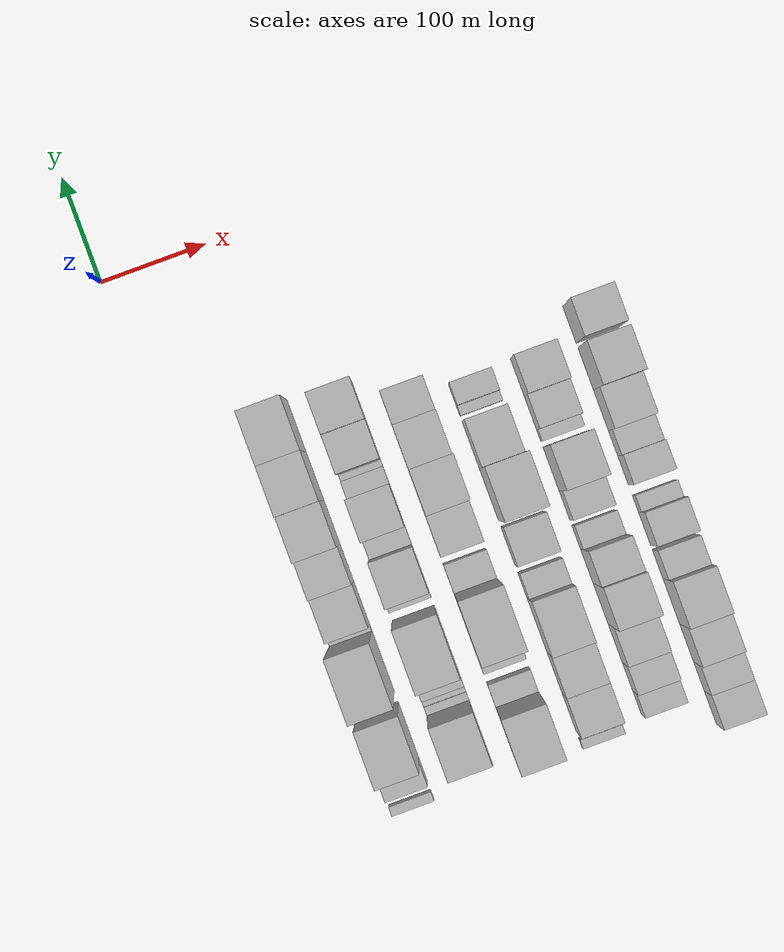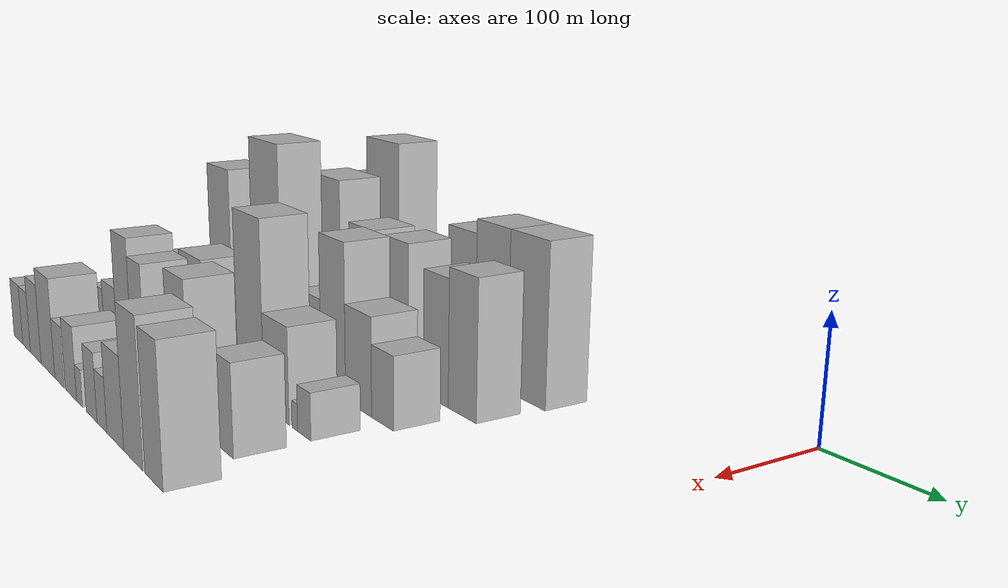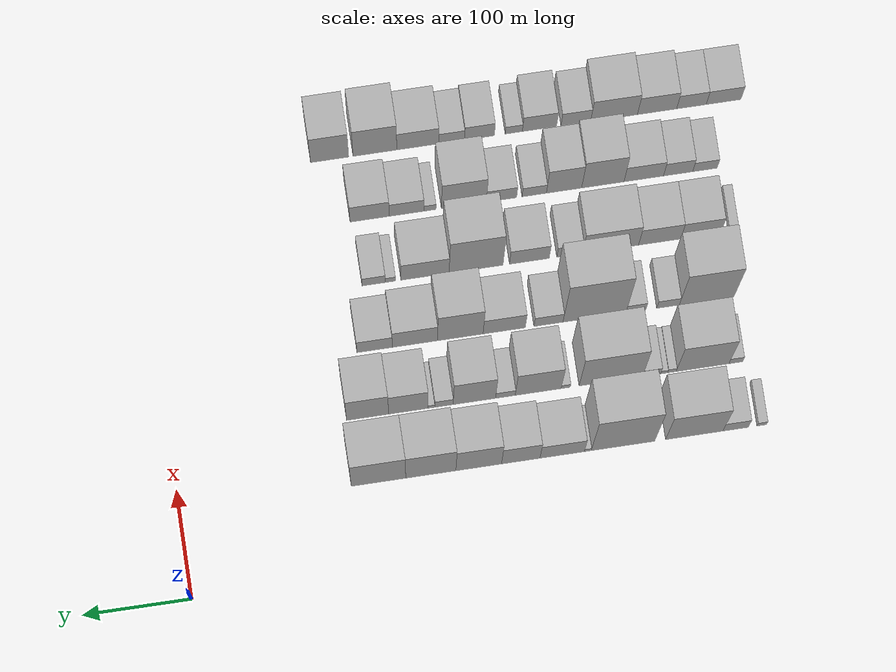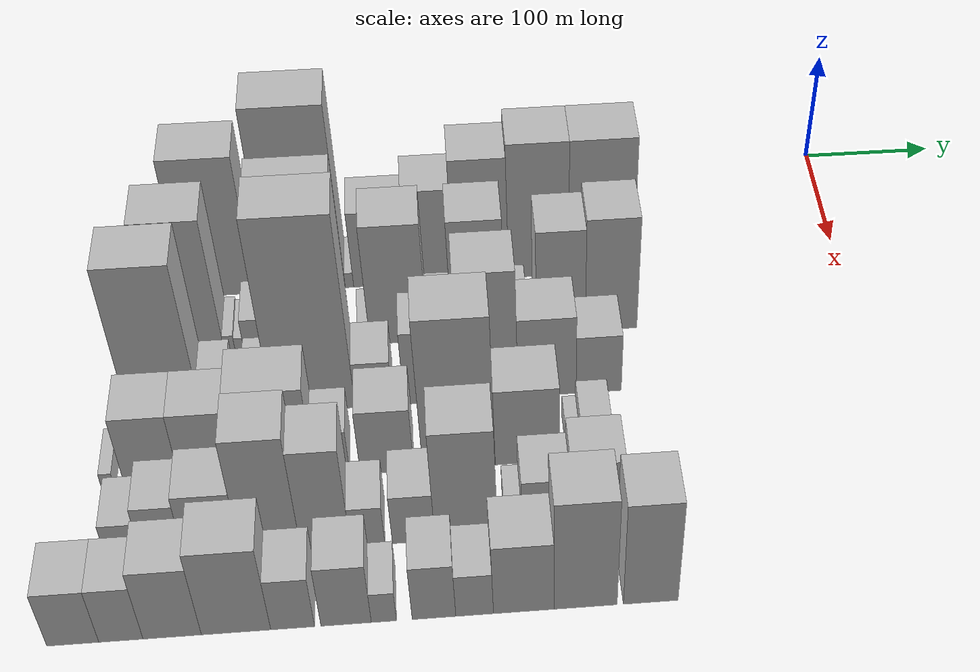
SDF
<sdf version="1.6">
 <world name="default">
  <model name="building_13">
   <static>1</static>
   <pose>100.0000 -531.7579 0 0.000000 0.000000 0.000000</pose>
   <link name="link">
    <pose>0 0 9.00 0 0 0</pose>
    <collision name="collision"><geometry><box><size>40.0000 8.8366 18.0000</size></box></geometry></collision>
    <visual name="visual">
     <cast_shadows>0</cast_shadows>
     <geometry><box><size>40.0000 8.8366 18.0000</size></box></geometry>
     <material>
      <script>
       <uri>model://HANNAS_wall/materials/scripts</uri>
       <uri>model://HANNAS_wall/materials/textures</uri>
       <name>vrc/HANNAS_wall</name>
      </script>
     </material>
    </visual>
   </link>
  </model>
  <model name="building_14">
   <static>1</static>
   <pose>100.0000 -507.6548 0 0.000000 0.000000 0.000000</pose>
   <link name="link">
    <pose>0 0 22.50 0 0 0</pose>
    <collision name="collision"><geometry><box><size>40.0000 23.3695 45.0000</size></box></geometry></collision>
    <visual name="visual">
     <cast_shadows>0</cast_shadows>
     <geometry><box><size>40.0000 23.3695 45.0000</size></box></geometry>
     <material>
      <script>
       <uri>model://HANNAS_wall/materials/scripts</uri>
       <uri>model://HANNAS_wall/materials/textures</uri>
       <name>vrc/HANNAS_wall</name>
      </script>
     </material>
    </visual>
   </link>
  </model>
  <model name="building_15">
   <static>1</static>
   <pose>100.0000 -469.8242 0 0.000000 0.000000 0.000000</pose>
   <link name="link">
    <pose>0 0 67.50 0 0 0</pose>
    <collision name="collision"><geometry><box><size>40.0000 52.2918 135.0000</size></box></geometry></collision>
    <visual name="visual">
     <cast_shadows>0</cast_shadows>
     <geometry><box><size>40.0000 52.2918 135.0000</size></box></geometry>
     <material>
      <script>
       <uri>model://HANNAS_wall/materials/scripts</uri>
       <uri>model://HANNAS_wall/materials/textures</uri>
       <name>vrc/HANNAS_wall</name>
      </script>
     </material>
    </visual>
   </link>
  </model>
  <model name="building_16">
   <static>1</static>
   <pose>100.0000 -404.6347 0 0.000000 0.000000 0.000000</pose>
   <link name="link">
    <pose>0 0 88.50 0 0 0</pose>
    <collision name="collision"><geometry><box><size>40.0000 58.0870 177.0000</size></box></geometry></collision>
    <visual name="visual">
     <cast_shadows>0</cast_shadows>
     <geometry><box><size>40.0000 58.0870 177.0000</size></box></geometry>
     <material>
      <script>
       <uri>model://HANNAS_wall/materials/scripts</uri>
       <uri>model://HANNAS_wall/materials/textures</uri>
       <name>vrc/HANNAS_wall</name>
      </script>
     </material>
    </visual>
   </link>
  </model>
  <model name="building_17">
   <static>1</static>
   <pose>100.0000 -372.4116 0 0.000000 0.000000 0.000000</pose>
   <link name="link">
    <pose>0 0 7.50 0 0 0</pose>
    <collision name="collision"><geometry><box><size>40.0000 6.3594 15.0000</size></box></geometry></collision>
    <visual name="visual">
     <cast_shadows>0</cast_shadows>
     <geometry><box><size>40.0000 6.3594 15.0000</size></box></geometry>
     <material>
      <script>
       <uri>model://HANNAS_wall/materials/scripts</uri>
       <uri>model://HANNAS_wall/materials/textures</uri>
       <name>vrc/HANNAS_wall</name>
      </script>
     </material>
    </visual>
   </link>
  </model>
  <model name="building_18">
   <static>1</static>
   <pose>100.0000 -348.9371 0 0.000000 0.000000 0.000000</pose>
   <link name="link">
    <pose>0 0 37.50 0 0 0</pose>
    <collision name="collision"><geometry><box><size>40.0000 40.5896 75.0000</size></box></geometry></collision>
    <visual name="visual">
     <cast_shadows>0</cast_shadows>
     <geometry><box><size>40.0000 40.5896 75.0000</size></box></geometry>
     <material>
      <script>
       <uri>model://HANNAS_wall/materials/scripts</uri>
       <uri>model://HANNAS_wall/materials/textures</uri>
       <name>vrc/HANNAS_wall</name>
      </script>
     </material>
    </visual>
   </link>
  </model>
  <model name="building_19">
   <static>1</static>
   <pose>100.0000 -311.1034 0 0.000000 0.000000 0.000000</pose>
   <link name="link">
    <pose>0 0 46.50 0 0 0</pose>
    <collision name="collision"><geometry><box><size>40.0000 35.0779 93.0000</size></box></geometry></collision>
    <visual name="visual">
     <cast_shadows>0</cast_shadows>
     <geometry><box><size>40.0000 35.0779 93.0000</size></box></geometry>
     <material>
      <script>
       <uri>model://HANNAS_wall/materials/scripts</uri>
       <uri>model://HANNAS_wall/materials/textures</uri>
       <name>vrc/HANNAS_wall</name>
      </script>
     </material>
    </visual>
   </link>
  </model>
  <model name="building_20">
   <static>1</static>
   <pose>100.0000 -272.7175 0 0.000000 0.000000 0.000000</pose>
   <link name="link">
    <pose>0 0 60.00 0 0 0</pose>
    <collision name="collision"><geometry><box><size>40.0000 41.6939 120.0000</size></box></geometry></collision>
    <visual name="visual">
     <cast_shadows>0</cast_shadows>
     <geometry><box><size>40.0000 41.6939 120.0000</size></box></geometry>
     <material>
      <script>
       <uri>model://HANNAS_wall/materials/scripts</uri>
       <uri>model://HANNAS_wall/materials/textures</uri>
       <name>vrc/HANNAS_wall</name>
      </script>
     </material>
    </visual>
   </link>
  </model>
  <model name="building_21">
   <static>1</static>
   <pose>100.0000 -228.9761 0 0.000000 0.000000 0.000000</pose>
   <link name="link">
    <pose>0 0 66.00 0 0 0</pose>
    <collision name="collision"><geometry><box><size>40.0000 45.7889 132.0000</size></box></geometry></collision>
    <visual name="visual">
     <cast_shadows>0</cast_shadows>
     <geometry><box><size>40.0000 45.7889 132.0000</size></box></geometry>
     <material>
      <script>
       <uri>model://HANNAS_wall/materials/scripts</uri>
       <uri>model://HANNAS_wall/materials/textures</uri>
       <name>vrc/HANNAS_wall</name>
      </script>
     </material>
    </visual>
   </link>
  </model>
  <model name="building_22">
   <static>1</static>
   <pose>100.0000 -181.2982 0 0.000000 0.000000 0.000000</pose>
   <link name="link">
    <pose>0 0 66.00 0 0 0</pose>
    <collision name="collision"><geometry><box><size>40.0000 49.5669 132.0000</size></box></geometry></collision>
    <visual name="visual">
     <cast_shadows>0</cast_shadows>
     <geometry><box><size>40.0000 49.5669 132.0000</size></box></geometry>
     <material>
      <script>
       <uri>model://HANNAS_wall/materials/scripts</uri>
       <uri>model://HANNAS_wall/materials/textures</uri>
       <name>vrc/HANNAS_wall</name>
      </script>
     </material>
    </visual>
   </link>
  </model>
  <model name="building_70">
   <static>1</static>
   <pose>160.0000 -517.6102 0 0.000000 0.000000 0.000000</pose>
   <link name="link">
    <pose>0 0 13.50 0 0 0</pose>
    <collision name="collision"><geometry><box><size>40.0000 12.5193 27.0000</size></box></geometry></collision>
    <visual name="visual">
     <cast_shadows>0</cast_shadows>
     <geometry><box><size>40.0000 12.5193 27.0000</size></box></geometry>
     <material>
      <script>
       <uri>model://HANNAS_wall/materials/scripts</uri>
       <uri>model://HANNAS_wall/materials/textures</uri>
       <name>vrc/HANNAS_wall</name>
      </script>
     </material>
    </visual>
   </link>
  </model>
  <model name="building_71">
   <static>1</static>
   <pose>160.0000 -487.1305 0 0.000000 0.000000 0.000000</pose>
   <link name="link">
    <pose>0 0 66.00 0 0 0</pose>
    <collision name="collision"><geometry><box><size>40.0000 48.4401 132.0000</size></box></geometry></collision>
    <visual name="visual">
     <cast_shadows>0</cast_shadows>
     <geometry><box><size>40.0000 48.4401 132.0000</size></box></geometry>
     <material>
      <script>
       <uri>model://HANNAS_wall/materials/scripts</uri>
       <uri>model://HANNAS_wall/materials/textures</uri>
       <name>vrc/HANNAS_wall</name>
      </script>
     </material>
    </visual>
   </link>
  </model>
  <model name="building_72">
   <static>1</static>
   <pose>160.0000 -459.0029 0 0.000000 0.000000 0.000000</pose>
   <link name="link">
    <pose>0 0 9.00 0 0 0</pose>
    <collision name="collision"><geometry><box><size>40.0000 7.8151 18.0000</size></box></geometry></collision>
    <visual name="visual">
     <cast_shadows>0</cast_shadows>
     <geometry><box><size>40.0000 7.8151 18.0000</size></box></geometry>
     <material>
      <script>
       <uri>model://HANNAS_wall/materials/scripts</uri>
       <uri>model://HANNAS_wall/materials/textures</uri>
       <name>vrc/HANNAS_wall</name>
      </script>
     </material>
    </visual>
   </link>
  </model>
  <model name="building_73">
   <static>1</static>
   <pose>160.0000 -451.9584 0 0.000000 0.000000 0.000000</pose>
   <link name="link">
    <pose>0 0 7.50 0 0 0</pose>
    <collision name="collision"><geometry><box><size>40.0000 6.2739 15.0000</size></box></geometry></collision>
    <visual name="visual">
     <cast_shadows>0</cast_shadows>
     <geometry><box><size>40.0000 6.2739 15.0000</size></box></geometry>
     <material>
      <script>
       <uri>model://HANNAS_wall/materials/scripts</uri>
       <uri>model://HANNAS_wall/materials/textures</uri>
       <name>vrc/HANNAS_wall</name>
      </script>
     </material>
    </visual>
   </link>
  </model>
  <model name="building_74">
   <static>1</static>
   <pose>160.0000 -440.4256 0 0.000000 0.000000 0.000000</pose>
   <link name="link">
    <pose>0 0 16.50 0 0 0</pose>
    <collision name="collision"><geometry><box><size>40.0000 16.7917 33.0000</size></box></geometry></collision>
    <visual name="visual">
     <cast_shadows>0</cast_shadows>
     <geometry><box><size>40.0000 16.7917 33.0000</size></box></geometry>
     <material>
      <script>
       <uri>model://HANNAS_wall/materials/scripts</uri>
       <uri>model://HANNAS_wall/materials/textures</uri>
       <name>vrc/HANNAS_wall</name>
      </script>
     </material>
    </visual>
   </link>
  </model>
  <model name="building_75">
   <static>1</static>
   <pose>160.0000 -402.9483 0 0.000000 0.000000 0.000000</pose>
   <link name="link">
    <pose>0 0 75.00 0 0 0</pose>
    <collision name="collision"><geometry><box><size>40.0000 58.1630 150.0000</size></box></geometry></collision>
    <visual name="visual">
     <cast_shadows>0</cast_shadows>
     <geometry><box><size>40.0000 58.1630 150.0000</size></box></geometry>
     <material>
      <script>
       <uri>model://HANNAS_wall/materials/scripts</uri>
       <uri>model://HANNAS_wall/materials/textures</uri>
       <name>vrc/HANNAS_wall</name>
      </script>
     </material>
    </visual>
   </link>
  </model>
  <model name="building_76">
   <static>1</static>
   <pose>160.0000 -361.6116 0 0.000000 0.000000 0.000000</pose>
   <link name="link">
    <pose>0 0 9.00 0 0 0</pose>
    <collision name="collision"><geometry><box><size>40.0000 8.5103 18.0000</size></box></geometry></collision>
    <visual name="visual">
     <cast_shadows>0</cast_shadows>
     <geometry><box><size>40.0000 8.5103 18.0000</size></box></geometry>
     <material>
      <script>
       <uri>model://HANNAS_wall/materials/scripts</uri>
       <uri>model://HANNAS_wall/materials/textures</uri>
       <name>vrc/HANNAS_wall</name>
      </script>
     </material>
    </visual>
   </link>
  </model>
  <model name="building_77">
   <static>1</static>
   <pose>160.0000 -336.3170 0 0.000000 0.000000 0.000000</pose>
   <link name="link">
    <pose>0 0 58.50 0 0 0</pose>
    <collision name="collision"><geometry><box><size>40.0000 42.0789 117.0000</size></box></geometry></collision>
    <visual name="visual">
     <cast_shadows>0</cast_shadows>
     <geometry><box><size>40.0000 42.0789 117.0000</size></box></geometry>
     <material>
      <script>
       <uri>model://HANNAS_wall/materials/scripts</uri>
       <uri>model://HANNAS_wall/materials/textures</uri>
       <name>vrc/HANNAS_wall</name>
      </script>
     </material>
    </visual>
   </link>
  </model>
  <model name="building_78">
   <static>1</static>
   <pose>160.0000 -306.2844 0 0.000000 0.000000 0.000000</pose>
   <link name="link">
    <pose>0 0 15.00 0 0 0</pose>
    <collision name="collision"><geometry><box><size>40.0000 17.9863 30.0000</size></box></geometry></collision>
    <visual name="visual">
     <cast_shadows>0</cast_shadows>
     <geometry><box><size>40.0000 17.9863 30.0000</size></box></geometry>
     <material>
      <script>
       <uri>model://HANNAS_wall/materials/scripts</uri>
       <uri>model://HANNAS_wall/materials/textures</uri>
       <name>vrc/HANNAS_wall</name>
      </script>
     </material>
    </visual>
   </link>
  </model>
  <model name="building_79">
   <static>1</static>
   <pose>160.0000 -277.8601 0 0.000000 0.000000 0.000000</pose>
   <link name="link">
    <pose>0 0 58.50 0 0 0</pose>
    <collision name="collision"><geometry><box><size>40.0000 38.8623 117.0000</size></box></geometry></collision>
    <visual name="visual">
     <cast_shadows>0</cast_shadows>
     <geometry><box><size>40.0000 38.8623 117.0000</size></box></geometry>
     <material>
      <script>
       <uri>model://HANNAS_wall/materials/scripts</uri>
       <uri>model://HANNAS_wall/materials/textures</uri>
       <name>vrc/HANNAS_wall</name>
      </script>
     </material>
    </visual>
   </link>
  </model>
  <model name="building_80">
   <static>1</static>
   <pose>160.0000 -250.0861 0 0.000000 0.000000 0.000000</pose>
   <link name="link">
    <pose>0 0 16.50 0 0 0</pose>
    <collision name="collision"><geometry><box><size>40.0000 16.6858 33.0000</size></box></geometry></collision>
    <visual name="visual">
     <cast_shadows>0</cast_shadows>
     <geometry><box><size>40.0000 16.6858 33.0000</size></box></geometry>
     <material>
      <script>
       <uri>model://HANNAS_wall/materials/scripts</uri>
       <uri>model://HANNAS_wall/materials/textures</uri>
       <name>vrc/HANNAS_wall</name>
      </script>
     </material>
    </visual>
   </link>
  </model>
  <model name="building_81">
   <static>1</static>
   <pose>160.0000 -238.5319 0 0.000000 0.000000 0.000000</pose>
   <link name="link">
    <pose>0 0 7.50 0 0 0</pose>
    <collision name="collision"><geometry><box><size>40.0000 6.4226 15.0000</size></box></geometry></collision>
    <visual name="visual">
     <cast_shadows>0</cast_shadows>
     <geometry><box><size>40.0000 6.4226 15.0000</size></box></geometry>
     <material>
      <script>
       <uri>model://HANNAS_wall/materials/scripts</uri>
       <uri>model://HANNAS_wall/materials/textures</uri>
       <name>vrc/HANNAS_wall</name>
      </script>
     </material>
    </visual>
   </link>
  </model>
  <model name="building_82">
   <static>1</static>
   <pose>160.0000 -217.3437 0 0.000000 0.000000 0.000000</pose>
   <link name="link">
    <pose>0 0 51.00 0 0 0</pose>
    <collision name="collision"><geometry><box><size>40.0000 35.9538 102.0000</size></box></geometry></collision>
    <visual name="visual">
     <cast_shadows>0</cast_shadows>
     <geometry><box><size>40.0000 35.9538 102.0000</size></box></geometry>
     <material>
      <script>
       <uri>model://HANNAS_wall/materials/scripts</uri>
       <uri>model://HANNAS_wall/materials/textures</uri>
       <name>vrc/HANNAS_wall</name>
      </script>
     </material>
    </visual>
   </link>
  </model>
  <model name="building_83">
   <static>1</static>
   <pose>160.0000 -180.2173 0 0.000000 0.000000 0.000000</pose>
   <link name="link">
    <pose>0 0 55.50 0 0 0</pose>
    <collision name="collision"><geometry><box><size>40.0000 38.2989 111.0000</size></box></geometry></collision>
    <visual name="visual">
     <cast_shadows>0</cast_shadows>
     <geometry><box><size>40.0000 38.2989 111.0000</size></box></geometry>
     <material>
      <script>
       <uri>model://HANNAS_wall/materials/scripts</uri>
       <uri>model://HANNAS_wall/materials/textures</uri>
       <name>vrc/HANNAS_wall</name>
      </script>
     </material>
    </visual>
   </link>
  </model>
  <model name="building_128">
   <static>1</static>
   <pose>220.0000 -500.4726 0 0.000000 0.000000 0.000000</pose>
   <link name="link">
    <pose>0 0 75.00 0 0 0</pose>
    <collision name="collision"><geometry><box><size>40.0000 50.2630 150.0000</size></box></geometry></collision>
    <visual name="visual">
     <cast_shadows>0</cast_shadows>
     <geometry><box><size>40.0000 50.2630 150.0000</size></box></geometry>
     <material>
      <script>
       <uri>model://HANNAS_wall/materials/scripts</uri>
       <uri>model://HANNAS_wall/materials/textures</uri>
       <name>vrc/HANNAS_wall</name>
      </script>
     </material>
    </visual>
   </link>
  </model>
  <model name="building_129">
   <static>1</static>
   <pose>220.0000 -464.9385 0 0.000000 0.000000 0.000000</pose>
   <link name="link">
    <pose>0 0 18.00 0 0 0</pose>
    <collision name="collision"><geometry><box><size>40.0000 20.8051 36.0000</size></box></geometry></collision>
    <visual name="visual">
     <cast_shadows>0</cast_shadows>
     <geometry><box><size>40.0000 20.8051 36.0000</size></box></geometry>
     <material>
      <script>
       <uri>model://HANNAS_wall/materials/scripts</uri>
       <uri>model://HANNAS_wall/materials/textures</uri>
       <name>vrc/HANNAS_wall</name>
      </script>
     </material>
    </visual>
   </link>
  </model>
  <model name="building_130">
   <static>1</static>
   <pose>220.0000 -435.4019 0 0.000000 0.000000 0.000000</pose>
   <link name="link">
    <pose>0 0 18.00 0 0 0</pose>
    <collision name="collision"><geometry><box><size>40.0000 18.2682 36.0000</size></box></geometry></collision>
    <visual name="visual">
     <cast_shadows>0</cast_shadows>
     <geometry><box><size>40.0000 18.2682 36.0000</size></box></geometry>
     <material>
      <script>
       <uri>model://HANNAS_wall/materials/scripts</uri>
       <uri>model://HANNAS_wall/materials/textures</uri>
       <name>vrc/HANNAS_wall</name>
      </script>
     </material>
    </visual>
   </link>
  </model>
  <model name="building_131">
   <static>1</static>
   <pose>220.0000 -397.3199 0 0.000000 0.000000 0.000000</pose>
   <link name="link">
    <pose>0 0 93.00 0 0 0</pose>
    <collision name="collision"><geometry><box><size>40.0000 57.8959 186.0000</size></box></geometry></collision>
    <visual name="visual">
     <cast_shadows>0</cast_shadows>
     <geometry><box><size>40.0000 57.8959 186.0000</size></box></geometry>
     <material>
      <script>
       <uri>model://HANNAS_wall/materials/scripts</uri>
       <uri>model://HANNAS_wall/materials/textures</uri>
       <name>vrc/HANNAS_wall</name>
      </script>
     </material>
    </visual>
   </link>
  </model>
  <model name="building_132">
   <static>1</static>
   <pose>220.0000 -355.0526 0 0.000000 0.000000 0.000000</pose>
   <link name="link">
    <pose>0 0 22.50 0 0 0</pose>
    <collision name="collision"><geometry><box><size>40.0000 26.6387 45.0000</size></box></geometry></collision>
    <visual name="visual">
     <cast_shadows>0</cast_shadows>
     <geometry><box><size>40.0000 26.6387 45.0000</size></box></geometry>
     <material>
      <script>
       <uri>model://HANNAS_wall/materials/scripts</uri>
       <uri>model://HANNAS_wall/materials/textures</uri>
       <name>vrc/HANNAS_wall</name>
      </script>
     </material>
    </visual>
   </link>
  </model>
  <model name="building_133">
   <static>1</static>
   <pose>220.0000 -314.3669 0 0.000000 0.000000 0.000000</pose>
   <link name="link">
    <pose>0 0 36.00 0 0 0</pose>
    <collision name="collision"><geometry><box><size>40.0000 38.7325 72.0000</size></box></geometry></collision>
    <visual name="visual">
     <cast_shadows>0</cast_shadows>
     <geometry><box><size>40.0000 38.7325 72.0000</size></box></geometry>
     <material>
      <script>
       <uri>model://HANNAS_wall/materials/scripts</uri>
       <uri>model://HANNAS_wall/materials/textures</uri>
       <name>vrc/HANNAS_wall</name>
      </script>
     </material>
    </visual>
   </link>
  </model>
  <model name="building_134">
   <static>1</static>
   <pose>220.0000 -274.0572 0 0.000000 0.000000 0.000000</pose>
   <link name="link">
    <pose>0 0 63.00 0 0 0</pose>
    <collision name="collision"><geometry><box><size>40.0000 41.8870 126.0000</size></box></geometry></collision>
    <visual name="visual">
     <cast_shadows>0</cast_shadows>
     <geometry><box><size>40.0000 41.8870 126.0000</size></box></geometry>
     <material>
      <script>
       <uri>model://HANNAS_wall/materials/scripts</uri>
       <uri>model://HANNAS_wall/materials/textures</uri>
       <name>vrc/HANNAS_wall</name>
      </script>
     </material>
    </visual>
   </link>
  </model>
  <model name="building_135">
   <static>1</static>
   <pose>220.0000 -232.4241 0 0.000000 0.000000 0.000000</pose>
   <link name="link">
    <pose>0 0 39.00 0 0 0</pose>
    <collision name="collision"><geometry><box><size>40.0000 41.3791 78.0000</size></box></geometry></collision>
    <visual name="visual">
     <cast_shadows>0</cast_shadows>
     <geometry><box><size>40.0000 41.3791 78.0000</size></box></geometry>
     <material>
      <script>
       <uri>model://HANNAS_wall/materials/scripts</uri>
       <uri>model://HANNAS_wall/materials/textures</uri>
       <name>vrc/HANNAS_wall</name>
      </script>
     </material>
    </visual>
   </link>
  </model>
  <model name="building_136">
   <static>1</static>
   <pose>220.0000 -195.5542 0 0.000000 0.000000 0.000000</pose>
   <link name="link">
    <pose>0 0 28.50 0 0 0</pose>
    <collision name="collision"><geometry><box><size>40.0000 32.3607 57.0000</size></box></geometry></collision>
    <visual name="visual">
     <cast_shadows>0</cast_shadows>
     <geometry><box><size>40.0000 32.3607 57.0000</size></box></geometry>
     <material>
      <script>
       <uri>model://HANNAS_wall/materials/scripts</uri>
       <uri>model://HANNAS_wall/materials/textures</uri>
       <name>vrc/HANNAS_wall</name>
      </script>
     </material>
    </visual>
   </link>
  </model>
  <model name="building_180">
   <static>1</static>
   <pose>280.0000 -534.4393 0 0.000000 0.000000 0.000000</pose>
   <link name="link">
    <pose>0 0 9.00 0 0 0</pose>
    <collision name="collision"><geometry><box><size>40.0000 8.6644 18.0000</size></box></geometry></collision>
    <visual name="visual">
     <cast_shadows>0</cast_shadows>
     <geometry><box><size>40.0000 8.6644 18.0000</size></box></geometry>
     <material>
      <script>
       <uri>model://HANNAS_wall/materials/scripts</uri>
       <uri>model://HANNAS_wall/materials/textures</uri>
       <name>vrc/HANNAS_wall</name>
      </script>
     </material>
    </visual>
   </link>
  </model>
  <model name="building_181">
   <static>1</static>
   <pose>280.0000 -504.6345 0 0.000000 0.000000 0.000000</pose>
   <link name="link">
    <pose>0 0 36.00 0 0 0</pose>
    <collision name="collision"><geometry><box><size>40.0000 36.9453 72.0000</size></box></geometry></collision>
    <visual name="visual">
     <cast_shadows>0</cast_shadows>
     <geometry><box><size>40.0000 36.9453 72.0000</size></box></geometry>
     <material>
      <script>
       <uri>model://HANNAS_wall/materials/scripts</uri>
       <uri>model://HANNAS_wall/materials/textures</uri>
       <name>vrc/HANNAS_wall</name>
      </script>
     </material>
    </visual>
   </link>
  </model>
  <model name="building_182">
   <static>1</static>
   <pose>280.0000 -466.7502 0 0.000000 0.000000 0.000000</pose>
   <link name="link">
    <pose>0 0 36.00 0 0 0</pose>
    <collision name="collision"><geometry><box><size>40.0000 38.8232 72.0000</size></box></geometry></collision>
    <visual name="visual">
     <cast_shadows>0</cast_shadows>
     <geometry><box><size>40.0000 38.8232 72.0000</size></box></geometry>
     <material>
      <script>
       <uri>model://HANNAS_wall/materials/scripts</uri>
       <uri>model://HANNAS_wall/materials/textures</uri>
       <name>vrc/HANNAS_wall</name>
      </script>
     </material>
    </visual>
   </link>
  </model>
  <model name="building_183">
   <static>1</static>
   <pose>280.0000 -421.5703 0 0.000000 0.000000 0.000000</pose>
   <link name="link">
    <pose>0 0 45.00 0 0 0</pose>
    <collision name="collision"><geometry><box><size>40.0000 51.5366 90.0000</size></box></geometry></collision>
    <visual name="visual">
     <cast_shadows>0</cast_shadows>
     <geometry><box><size>40.0000 51.5366 90.0000</size></box></geometry>
     <material>
      <script>
       <uri>model://HANNAS_wall/materials/scripts</uri>
       <uri>model://HANNAS_wall/materials/textures</uri>
       <name>vrc/HANNAS_wall</name>
      </script>
     </material>
    </visual>
   </link>
  </model>
  <model name="building_184">
   <static>1</static>
   <pose>280.0000 -383.9019 0 0.000000 0.000000 0.000000</pose>
   <link name="link">
    <pose>0 0 22.50 0 0 0</pose>
    <collision name="collision"><geometry><box><size>40.0000 23.8002 45.0000</size></box></geometry></collision>
    <visual name="visual">
     <cast_shadows>0</cast_shadows>
     <geometry><box><size>40.0000 23.8002 45.0000</size></box></geometry>
     <material>
      <script>
       <uri>model://HANNAS_wall/materials/scripts</uri>
       <uri>model://HANNAS_wall/materials/textures</uri>
       <name>vrc/HANNAS_wall</name>
      </script>
     </material>
    </visual>
   </link>
  </model>
  <model name="building_185">
   <static>1</static>
   <pose>280.0000 -346.7400 0 0.000000 0.000000 0.000000</pose>
   <link name="link">
    <pose>0 0 31.50 0 0 0</pose>
    <collision name="collision"><geometry><box><size>40.0000 36.5236 63.0000</size></box></geometry></collision>
    <visual name="visual">
     <cast_shadows>0</cast_shadows>
     <geometry><box><size>40.0000 36.5236 63.0000</size></box></geometry>
     <material>
      <script>
       <uri>model://HANNAS_wall/materials/scripts</uri>
       <uri>model://HANNAS_wall/materials/textures</uri>
       <name>vrc/HANNAS_wall</name>
      </script>
     </material>
    </visual>
   </link>
  </model>
  <model name="building_186">
   <static>1</static>
   <pose>280.0000 -297.6838 0 0.000000 0.000000 0.000000</pose>
   <link name="link">
    <pose>0 0 73.50 0 0 0</pose>
    <collision name="collision"><geometry><box><size>40.0000 49.5888 147.0000</size></box></geometry></collision>
    <visual name="visual">
     <cast_shadows>0</cast_shadows>
     <geometry><box><size>40.0000 49.5888 147.0000</size></box></geometry>
     <material>
      <script>
       <uri>model://HANNAS_wall/materials/scripts</uri>
       <uri>model://HANNAS_wall/materials/textures</uri>
       <name>vrc/HANNAS_wall</name>
      </script>
     </material>
    </visual>
   </link>
  </model>
  <model name="building_187">
   <static>1</static>
   <pose>280.0000 -250.7791 0 0.000000 0.000000 0.000000</pose>
   <link name="link">
    <pose>0 0 37.50 0 0 0</pose>
    <collision name="collision"><geometry><box><size>40.0000 44.2206 75.0000</size></box></geometry></collision>
    <visual name="visual">
     <cast_shadows>0</cast_shadows>
     <geometry><box><size>40.0000 44.2206 75.0000</size></box></geometry>
     <material>
      <script>
       <uri>model://HANNAS_wall/materials/scripts</uri>
       <uri>model://HANNAS_wall/materials/textures</uri>
       <name>vrc/HANNAS_wall</name>
      </script>
     </material>
    </visual>
   </link>
  </model>
  <model name="building_188">
   <static>1</static>
   <pose>280.0000 -218.9787 0 0.000000 0.000000 0.000000</pose>
   <link name="link">
    <pose>0 0 10.50 0 0 0</pose>
    <collision name="collision"><geometry><box><size>40.0000 9.3801 21.0000</size></box></geometry></collision>
    <visual name="visual">
     <cast_shadows>0</cast_shadows>
     <geometry><box><size>40.0000 9.3801 21.0000</size></box></geometry>
     <material>
      <script>
       <uri>model://HANNAS_wall/materials/scripts</uri>
       <uri>model://HANNAS_wall/materials/textures</uri>
       <name>vrc/HANNAS_wall</name>
      </script>
     </material>
    </visual>
   </link>
  </model>
  <model name="building_189">
   <static>1</static>
   <pose>280.0000 -203.5679 0 0.000000 0.000000 0.000000</pose>
   <link name="link">
    <pose>0 0 18.00 0 0 0</pose>
    <collision name="collision"><geometry><box><size>40.0000 21.4415 36.0000</size></box></geometry></collision>
    <visual name="visual">
     <cast_shadows>0</cast_shadows>
     <geometry><box><size>40.0000 21.4415 36.0000</size></box></geometry>
     <material>
      <script>
       <uri>model://HANNAS_wall/materials/scripts</uri>
       <uri>model://HANNAS_wall/materials/textures</uri>
       <name>vrc/HANNAS_wall</name>
      </script>
     </material>
    </visual>
   </link>
  </model>
  <model name="building_233">
   <static>1</static>
   <pose>340.0000 -518.1728 0 0.000000 0.000000 0.000000</pose>
   <link name="link">
    <pose>0 0 19.50 0 0 0</pose>
    <collision name="collision"><geometry><box><size>40.0000 22.5523 39.0000</size></box></geometry></collision>
    <visual name="visual">
     <cast_shadows>0</cast_shadows>
     <geometry><box><size>40.0000 22.5523 39.0000</size></box></geometry>
     <material>
      <script>
       <uri>model://HANNAS_wall/materials/scripts</uri>
       <uri>model://HANNAS_wall/materials/textures</uri>
       <name>vrc/HANNAS_wall</name>
      </script>
     </material>
    </visual>
   </link>
  </model>
  <model name="building_234">
   <static>1</static>
   <pose>340.0000 -493.3897 0 0.000000 0.000000 0.000000</pose>
   <link name="link">
    <pose>0 0 27.00 0 0 0</pose>
    <collision name="collision"><geometry><box><size>40.0000 27.0139 54.0000</size></box></geometry></collision>
    <visual name="visual">
     <cast_shadows>0</cast_shadows>
     <geometry><box><size>40.0000 27.0139 54.0000</size></box></geometry>
     <material>
      <script>
       <uri>model://HANNAS_wall/materials/scripts</uri>
       <uri>model://HANNAS_wall/materials/textures</uri>
       <name>vrc/HANNAS_wall</name>
      </script>
     </material>
    </visual>
   </link>
  </model>
  <model name="building_235">
   <static>1</static>
   <pose>340.0000 -461.5969 0 0.000000 0.000000 0.000000</pose>
   <link name="link">
    <pose>0 0 31.50 0 0 0</pose>
    <collision name="collision"><geometry><box><size>40.0000 36.5716 63.0000</size></box></geometry></collision>
    <visual name="visual">
     <cast_shadows>0</cast_shadows>
     <geometry><box><size>40.0000 36.5716 63.0000</size></box></geometry>
     <material>
      <script>
       <uri>model://HANNAS_wall/materials/scripts</uri>
       <uri>model://HANNAS_wall/materials/textures</uri>
       <name>vrc/HANNAS_wall</name>
      </script>
     </material>
    </visual>
   </link>
  </model>
  <model name="building_236">
   <static>1</static>
   <pose>340.0000 -423.7519 0 0.000000 0.000000 0.000000</pose>
   <link name="link">
    <pose>0 0 57.00 0 0 0</pose>
    <collision name="collision"><geometry><box><size>40.0000 39.1185 114.0000</size></box></geometry></collision>
    <visual name="visual">
     <cast_shadows>0</cast_shadows>
     <geometry><box><size>40.0000 39.1185 114.0000</size></box></geometry>
     <material>
      <script>
       <uri>model://HANNAS_wall/materials/scripts</uri>
       <uri>model://HANNAS_wall/materials/textures</uri>
       <name>vrc/HANNAS_wall</name>
      </script>
     </material>
    </visual>
   </link>
  </model>
  <model name="building_237">
   <static>1</static>
   <pose>340.0000 -387.9393 0 0.000000 0.000000 0.000000</pose>
   <link name="link">
    <pose>0 0 49.50 0 0 0</pose>
    <collision name="collision"><geometry><box><size>40.0000 32.5068 99.0000</size></box></geometry></collision>
    <visual name="visual">
     <cast_shadows>0</cast_shadows>
     <geometry><box><size>40.0000 32.5068 99.0000</size></box></geometry>
     <material>
      <script>
       <uri>model://HANNAS_wall/materials/scripts</uri>
       <uri>model://HANNAS_wall/materials/textures</uri>
       <name>vrc/HANNAS_wall</name>
      </script>
     </material>
    </visual>
   </link>
  </model>
  <model name="building_238">
   <static>1</static>
   <pose>340.0000 -360.4614 0 0.000000 0.000000 0.000000</pose>
   <link name="link">
    <pose>0 0 19.50 0 0 0</pose>
    <collision name="collision"><geometry><box><size>40.0000 22.4490 39.0000</size></box></geometry></collision>
    <visual name="visual">
     <cast_shadows>0</cast_shadows>
     <geometry><box><size>40.0000 22.4490 39.0000</size></box></geometry>
     <material>
      <script>
       <uri>model://HANNAS_wall/materials/scripts</uri>
       <uri>model://HANNAS_wall/materials/textures</uri>
       <name>vrc/HANNAS_wall</name>
      </script>
     </material>
    </visual>
   </link>
  </model>
  <model name="building_239">
   <static>1</static>
   <pose>340.0000 -330.2569 0 0.000000 0.000000 0.000000</pose>
   <link name="link">
    <pose>0 0 24.00 0 0 0</pose>
    <collision name="collision"><geometry><box><size>40.0000 27.9601 48.0000</size></box></geometry></collision>
    <visual name="visual">
     <cast_shadows>0</cast_shadows>
     <geometry><box><size>40.0000 27.9601 48.0000</size></box></geometry>
     <material>
      <script>
       <uri>model://HANNAS_wall/materials/scripts</uri>
       <uri>model://HANNAS_wall/materials/textures</uri>
       <name>vrc/HANNAS_wall</name>
      </script>
     </material>
    </visual>
   </link>
  </model>
  <model name="building_240">
   <static>1</static>
   <pose>340.0000 -295.5637 0 0.000000 0.000000 0.000000</pose>
   <link name="link">
    <pose>0 0 54.00 0 0 0</pose>
    <collision name="collision"><geometry><box><size>40.0000 41.4262 108.0000</size></box></geometry></collision>
    <visual name="visual">
     <cast_shadows>0</cast_shadows>
     <geometry><box><size>40.0000 41.4262 108.0000</size></box></geometry>
     <material>
      <script>
       <uri>model://HANNAS_wall/materials/scripts</uri>
       <uri>model://HANNAS_wall/materials/textures</uri>
       <name>vrc/HANNAS_wall</name>
      </script>
     </material>
    </visual>
   </link>
  </model>
  <model name="building_241">
   <static>1</static>
   <pose>340.0000 -264.2810 0 0.000000 0.000000 0.000000</pose>
   <link name="link">
    <pose>0 0 12.00 0 0 0</pose>
    <collision name="collision"><geometry><box><size>40.0000 11.1394 24.0000</size></box></geometry></collision>
    <visual name="visual">
     <cast_shadows>0</cast_shadows>
     <geometry><box><size>40.0000 11.1394 24.0000</size></box></geometry>
     <material>
      <script>
       <uri>model://HANNAS_wall/materials/scripts</uri>
       <uri>model://HANNAS_wall/materials/textures</uri>
       <name>vrc/HANNAS_wall</name>
      </script>
     </material>
    </visual>
   </link>
  </model>
  <model name="building_242">
   <static>1</static>
   <pose>340.0000 -242.7168 0 0.000000 0.000000 0.000000</pose>
   <link name="link">
    <pose>0 0 27.00 0 0 0</pose>
    <collision name="collision"><geometry><box><size>40.0000 31.9890 54.0000</size></box></geometry></collision>
    <visual name="visual">
     <cast_shadows>0</cast_shadows>
     <geometry><box><size>40.0000 31.9890 54.0000</size></box></geometry>
     <material>
      <script>
       <uri>model://HANNAS_wall/materials/scripts</uri>
       <uri>model://HANNAS_wall/materials/textures</uri>
       <name>vrc/HANNAS_wall</name>
      </script>
     </material>
    </visual>
   </link>
  </model>
  <model name="building_243">
   <static>1</static>
   <pose>340.0000 -208.7238 0 0.000000 0.000000 0.000000</pose>
   <link name="link">
    <pose>0 0 34.50 0 0 0</pose>
    <collision name="collision"><geometry><box><size>40.0000 35.9970 69.0000</size></box></geometry></collision>
    <visual name="visual">
     <cast_shadows>0</cast_shadows>
     <geometry><box><size>40.0000 35.9970 69.0000</size></box></geometry>
     <material>
      <script>
       <uri>model://HANNAS_wall/materials/scripts</uri>
       <uri>model://HANNAS_wall/materials/textures</uri>
       <name>vrc/HANNAS_wall</name>
      </script>
     </material>
    </visual>
   </link>
  </model>
  <model name="building_288">
   <static>1</static>
   <pose>400.0000 -545.1124 0 0.000000 0.000000 0.000000</pose>
   <link name="link">
    <pose>0 0 27.00 0 0 0</pose>
    <collision name="collision"><geometry><box><size>40.0000 32.1667 54.0000</size></box></geometry></collision>
    <visual name="visual">
     <cast_shadows>0</cast_shadows>
     <geometry><box><size>40.0000 32.1667 54.0000</size></box></geometry>
     <material>
      <script>
       <uri>model://HANNAS_wall/materials/scripts</uri>
       <uri>model://HANNAS_wall/materials/textures</uri>
       <name>vrc/HANNAS_wall</name>
      </script>
     </material>
    </visual>
   </link>
  </model>
  <model name="building_289">
   <static>1</static>
   <pose>400.0000 -515.3185 0 0.000000 0.000000 0.000000</pose>
   <link name="link">
    <pose>0 0 27.00 0 0 0</pose>
    <collision name="collision"><geometry><box><size>40.0000 27.4212 54.0000</size></box></geometry></collision>
    <visual name="visual">
     <cast_shadows>0</cast_shadows>
     <geometry><box><size>40.0000 27.4212 54.0000</size></box></geometry>
     <material>
      <script>
       <uri>model://HANNAS_wall/materials/scripts</uri>
       <uri>model://HANNAS_wall/materials/textures</uri>
       <name>vrc/HANNAS_wall</name>
      </script>
     </material>
    </visual>
   </link>
  </model>
  <model name="building_290">
   <static>1</static>
   <pose>400.0000 -483.4608 0 0.000000 0.000000 0.000000</pose>
   <link name="link">
    <pose>0 0 34.50 0 0 0</pose>
    <collision name="collision"><geometry><box><size>40.0000 36.2941 69.0000</size></box></geometry></collision>
    <visual name="visual">
     <cast_shadows>0</cast_shadows>
     <geometry><box><size>40.0000 36.2941 69.0000</size></box></geometry>
     <material>
      <script>
       <uri>model://HANNAS_wall/materials/scripts</uri>
       <uri>model://HANNAS_wall/materials/textures</uri>
       <name>vrc/HANNAS_wall</name>
      </script>
     </material>
    </visual>
   </link>
  </model>
  <model name="building_291">
   <static>1</static>
   <pose>400.0000 -443.6168 0 0.000000 0.000000 0.000000</pose>
   <link name="link">
    <pose>0 0 42.00 0 0 0</pose>
    <collision name="collision"><geometry><box><size>40.0000 43.3940 84.0000</size></box></geometry></collision>
    <visual name="visual">
     <cast_shadows>0</cast_shadows>
     <geometry><box><size>40.0000 43.3940 84.0000</size></box></geometry>
     <material>
      <script>
       <uri>model://HANNAS_wall/materials/scripts</uri>
       <uri>model://HANNAS_wall/materials/textures</uri>
       <name>vrc/HANNAS_wall</name>
      </script>
     </material>
    </visual>
   </link>
  </model>
  <model name="building_292">
   <static>1</static>
   <pose>400.0000 -408.1726 0 0.000000 0.000000 0.000000</pose>
   <link name="link">
    <pose>0 0 25.50 0 0 0</pose>
    <collision name="collision"><geometry><box><size>40.0000 27.4943 51.0000</size></box></geometry></collision>
    <visual name="visual">
     <cast_shadows>0</cast_shadows>
     <geometry><box><size>40.0000 27.4943 51.0000</size></box></geometry>
     <material>
      <script>
       <uri>model://HANNAS_wall/materials/scripts</uri>
       <uri>model://HANNAS_wall/materials/textures</uri>
       <name>vrc/HANNAS_wall</name>
      </script>
     </material>
    </visual>
   </link>
  </model>
  <model name="building_293">
   <static>1</static>
   <pose>400.0000 -374.5627 0 0.000000 0.000000 0.000000</pose>
   <link name="link">
    <pose>0 0 30.00 0 0 0</pose>
    <collision name="collision"><geometry><box><size>40.0000 31.7255 60.0000</size></box></geometry></collision>
    <visual name="visual">
     <cast_shadows>0</cast_shadows>
     <geometry><box><size>40.0000 31.7255 60.0000</size></box></geometry>
     <material>
      <script>
       <uri>model://HANNAS_wall/materials/scripts</uri>
       <uri>model://HANNAS_wall/materials/textures</uri>
       <name>vrc/HANNAS_wall</name>
      </script>
     </material>
    </visual>
   </link>
  </model>
  <model name="building_294">
   <static>1</static>
   <pose>400.0000 -350.7719 0 0.000000 0.000000 0.000000</pose>
   <link name="link">
    <pose>0 0 15.00 0 0 0</pose>
    <collision name="collision"><geometry><box><size>40.0000 15.8560 30.0000</size></box></geometry></collision>
    <visual name="visual">
     <cast_shadows>0</cast_shadows>
     <geometry><box><size>40.0000 15.8560 30.0000</size></box></geometry>
     <material>
      <script>
       <uri>model://HANNAS_wall/materials/scripts</uri>
       <uri>model://HANNAS_wall/materials/textures</uri>
       <name>vrc/HANNAS_wall</name>
      </script>
     </material>
    </visual>
   </link>
  </model>
  <model name="building_295">
   <static>1</static>
   <pose>400.0000 -319.0430 0 0.000000 0.000000 0.000000</pose>
   <link name="link">
    <pose>0 0 27.00 0 0 0</pose>
    <collision name="collision"><geometry><box><size>40.0000 27.6019 54.0000</size></box></geometry></collision>
    <visual name="visual">
     <cast_shadows>0</cast_shadows>
     <geometry><box><size>40.0000 27.6019 54.0000</size></box></geometry>
     <material>
      <script>
       <uri>model://HANNAS_wall/materials/scripts</uri>
       <uri>model://HANNAS_wall/materials/textures</uri>
       <name>vrc/HANNAS_wall</name>
      </script>
     </material>
    </visual>
   </link>
  </model>
  <model name="building_296">
   <static>1</static>
   <pose>400.0000 -293.2723 0 0.000000 0.000000 0.000000</pose>
   <link name="link">
    <pose>0 0 21.00 0 0 0</pose>
    <collision name="collision"><geometry><box><size>40.0000 23.9394 42.0000</size></box></geometry></collision>
    <visual name="visual">
     <cast_shadows>0</cast_shadows>
     <geometry><box><size>40.0000 23.9394 42.0000</size></box></geometry>
     <material>
      <script>
       <uri>model://HANNAS_wall/materials/scripts</uri>
       <uri>model://HANNAS_wall/materials/textures</uri>
       <name>vrc/HANNAS_wall</name>
      </script>
     </material>
    </visual>
   </link>
  </model>
  <model name="building_297">
   <static>1</static>
   <pose>400.0000 -261.9620 0 0.000000 0.000000 0.000000</pose>
   <link name="link">
    <pose>0 0 34.50 0 0 0</pose>
    <collision name="collision"><geometry><box><size>40.0000 38.6812 69.0000</size></box></geometry></collision>
    <visual name="visual">
     <cast_shadows>0</cast_shadows>
     <geometry><box><size>40.0000 38.6812 69.0000</size></box></geometry>
     <material>
      <script>
       <uri>model://HANNAS_wall/materials/scripts</uri>
       <uri>model://HANNAS_wall/materials/textures</uri>
       <name>vrc/HANNAS_wall</name>
      </script>
     </material>
    </visual>
   </link>
  </model>
  <model name="building_298">
   <static>1</static>
   <pose>400.0000 -222.4458 0 0.000000 0.000000 0.000000</pose>
   <link name="link">
    <pose>0 0 54.00 0 0 0</pose>
    <collision name="collision"><geometry><box><size>40.0000 40.3511 108.0000</size></box></geometry></collision>
    <visual name="visual">
     <cast_shadows>0</cast_shadows>
     <geometry><box><size>40.0000 40.3511 108.0000</size></box></geometry>
     <material>
      <script>
       <uri>model://HANNAS_wall/materials/scripts</uri>
       <uri>model://HANNAS_wall/materials/textures</uri>
       <name>vrc/HANNAS_wall</name>
      </script>
     </material>
    </visual>
   </link>
  </model>
  <model name="building_299">
   <static>1</static>
   <pose>400.0000 -180.6757 0 0.000000 0.000000 0.000000</pose>
   <link name="link">
    <pose>0 0 51.00 0 0 0</pose>
    <collision name="collision"><geometry><box><size>40.0000 35.1892 102.0000</size></box></geometry></collision>
    <visual name="visual">
     <cast_shadows>0</cast_shadows>
     <geometry><box><size>40.0000 35.1892 102.0000</size></box></geometry>
     <material>
      <script>
       <uri>model://HANNAS_wall/materials/scripts</uri>
       <uri>model://HANNAS_wall/materials/textures</uri>
       <name>vrc/HANNAS_wall</name>
      </script>
     </material>
    </visual>
   </link>
  </model>
 </world>
</sdf>
